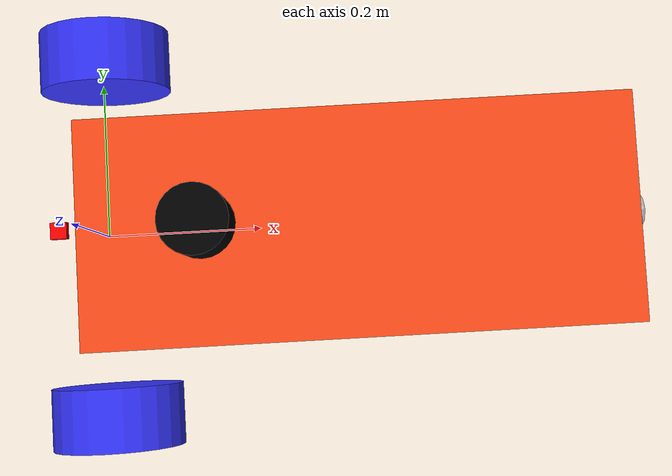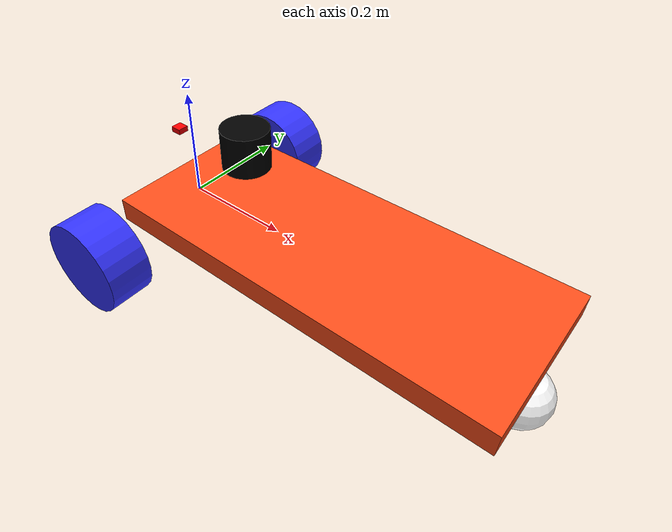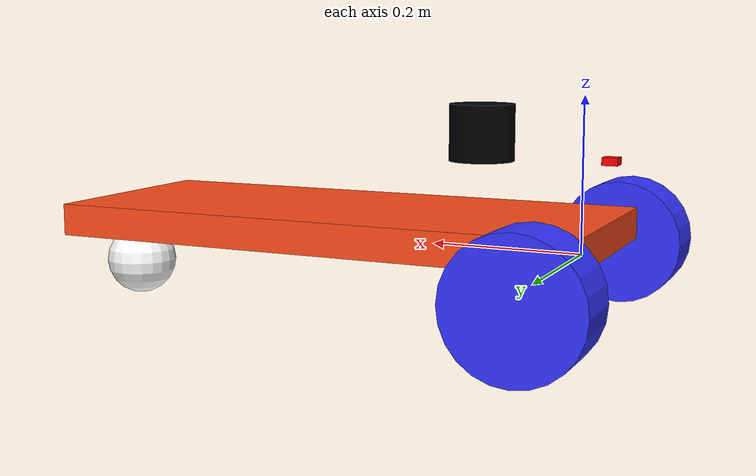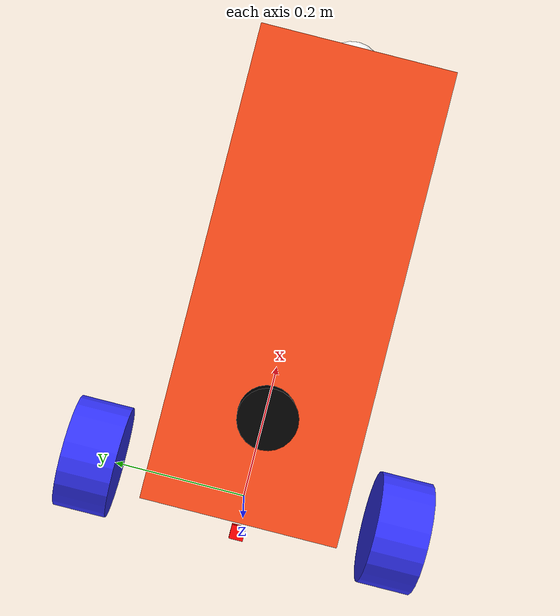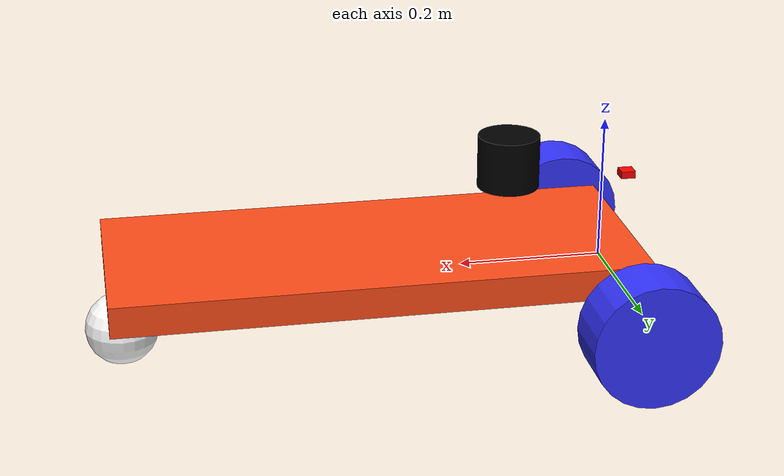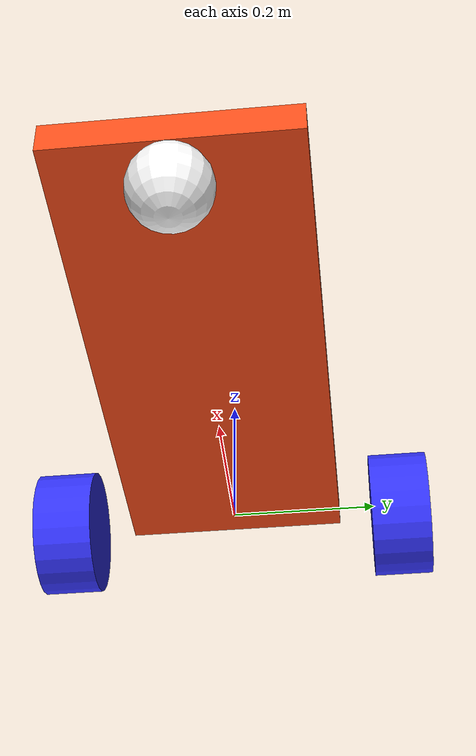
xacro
<?xml version="1.0"?>
<robot xmlns:xacro="http://www.ros.org/wiki/xacro"  name="robot">

    <xacro:arg name="use_ros2_control" default="true"/>
    <xacro:arg name="sim_mode" default="true"/>

    <xacro:include filename="robot_core.xacro" />

    <xacro:if value="$(arg use_ros2_control)">
        <xacro:include filename="ros2_control.xacro" />
    </xacro:if>
    <xacro:unless value="$(arg use_ros2_control)">
        <xacro:include filename="gazebo_control.xacro" />
    </xacro:unless>
    <xacro:include filename="lidar.xacro" />

</robot>

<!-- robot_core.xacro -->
<robot xmlns:xacro="http://www.ros.org/wiki/xacro" >

    <xacro:include filename="inertial_macros.xacro"/>

    <xacro:property name="chassis_length" value="0.725"/>
    <xacro:property name="chassis_width" value="0.3"/>
    <xacro:property name="chassis_height" value="0.043"/>
    <xacro:property name="chassis_mass" value="0.24"/>
    <xacro:property name="wheel_radius" value="0.0855"/>
    <xacro:property name="wheel_thickness" value="0.08"/>
    <xacro:property name="wheel_mass" value="0.05"/>
    <xacro:property name="wheel_offset_x" value="0.035"/>
    <xacro:property name="wheel_offset_y" value="0.2355"/>
    <xacro:property name="wheel_offset_z" value="0.0215"/>
    <xacro:property name="caster_wheel_radius" value="0.05"/>
    <xacro:property name="caster_wheel_mass" value="0.01"/>
    <xacro:property name="caster_wheel_offset_x" value="0.70645"/>
    <xacro:property name="caster_wheel_offset_z" value="0.057"/>

    <material name="white">
        <color rgba="1 1 1 1" />
    </material>

    <material name="orange">
        <color rgba="1 0.3 0.1 1"/>
    </material>

    <material name="blue">
        <color rgba="0.2 0.2 1 1"/>
    </material>

    <material name="black">
        <color rgba="0 0 0 1"/>
    </material>

    <material name="red">
        <color rgba="1 0 0 1"/>
    </material>

    <!-- BASE LINK -->

    <link name="base_link">

    </link>

    <!-- BASE_FOOTPRINT LINK -->

    <joint name="base_footprint_joint" type="fixed">
        <parent link="base_link"/>
        <child link="base_footprint"/>
        <origin xyz="0 0 0" rpy="0 0 0"/>
    </joint>

    <link name="base_footprint">
    </link>

    <!-- CHASSIS LINK -->

    <joint name="chassis_joint" type="fixed">
        <parent link="base_link"/>
        <child link="chassis"/>
        <origin xyz="${-wheel_offset_x} 0 0"/>
    </joint>

    <link name="chassis">
        <visual>
            <origin xyz="${chassis_length/2} 0 ${chassis_height/2}"/>
            <geometry>
                <box size="${chassis_length} ${chassis_width} ${chassis_height}"/>
            </geometry>
            <material name="orange"/>
        </visual>
        <collision>
            <origin xyz="${chassis_length/2} 0 ${chassis_height/2}"/>
            <geometry>
                <box size="${chassis_length} ${chassis_width} ${chassis_height}"/>
            </geometry>
        </collision>
        <xacro:inertial_box mass="0.24" x="${chassis_length}" y="${chassis_width}" z="${chassis_height}">
            <origin xyz="${chassis_length/2} 0 ${chassis_height/2}" rpy="0 0 0"/>
        </xacro:inertial_box>
    </link>

    <gazebo reference="chassis">
        <material>Gazebo/Orange</material>
    </gazebo>

    <!-- LEFT WHEEL LINK -->

    <joint name="left_wheel_joint" type="continuous">
        <parent link="base_link"/>
        <child link="left_wheel"/>
        <origin xyz="0 ${wheel_offset_y} -0.015" rpy="-${pi/2} 0 0" />
        <axis xyz="0 0 1"/>
    </joint>

    <link name="left_wheel">
        <visual>
            <origin xyz="0 0 0" rpy="0 0 0"/>
            <geometry>
                <cylinder radius="${wheel_radius}" length="${wheel_thickness}"/>
            </geometry>
            <material name="blue"/>
        </visual>
        <collision>
            <geometry>
                <sphere radius="${wheel_radius}"/>
            </geometry>
        </collision>
        <xacro:inertial_cylinder mass="${wheel_mass}" length="${wheel_thickness}" radius="${wheel_radius}">
            <origin xyz="0 0 0" rpy="0 0 0"/>
        </xacro:inertial_cylinder>
    </link>

    <gazebo reference="left_wheel">
        <material>Gazebo/Blue</material>
    </gazebo>

    <!-- RIGHT WHEEL LINK -->

    <joint name="right_wheel_joint" type="continuous">
        <parent link="base_link"/>
        <child link="right_wheel"/>
        <origin xyz="0 ${-wheel_offset_y} -0.015" rpy="${pi/2} 0 0" />
        <axis xyz="0 0 -1"/>
    </joint>

    <link name="right_wheel">
        <visual>
            <origin xyz="0 0 0" rpy="0 0 0"/>
            <geometry>
                <cylinder radius="${wheel_radius}" length="${wheel_thickness}"/>
            </geometry>
            <material name="blue"/>
        </visual>
        <collision>
            <geometry>
                <sphere radius="${wheel_radius}"/>
            </geometry>
        </collision>
        <xacro:inertial_cylinder mass="${wheel_mass}" length="${wheel_thickness}" radius="${wheel_radius}">
            <origin xyz="0 0 0" rpy="0 0 0"/>
        </xacro:inertial_cylinder>
    </link>

    <gazebo reference="right_wheel">
        <material>Gazebo/Blue</material>
    </gazebo>

    <!-- CASTER WHEEL LINK -->

    <joint name="caster_wheel_joint" type="fixed">
        <parent link="chassis"/>
        <child link="caster_wheel"/>
        <origin xyz="${caster_wheel_offset_x} 0 ${-caster_wheel_offset_z}"/>
    </joint>

    <link name="caster_wheel">
        <visual>
            <origin xyz="0 0 0" rpy="0 0 0"/>
            <geometry>
                <sphere radius="${caster_wheel_radius}"/>
            </geometry>
            <material name="white"/>
        </visual>
        <collision>
            <geometry>
                <sphere radius="${caster_wheel_radius}"/>
            </geometry>
        </collision>
        <xacro:inertial_sphere mass="${caster_wheel_mass}" radius="${caster_wheel_radius}">
            <origin xyz="0 0 0" rpy="0 0 0"/>
        </xacro:inertial_sphere>
    </link>

    <gazebo reference="caster_wheel">
        <material>Gazebo/White</material>
        <mu1 value="0.001"/>
        <mu2 value="0.001"/>
    </gazebo>

</robot>

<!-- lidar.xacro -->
<robot xmlns:xacro="http://www.ros.org/wiki/xacro" >

    <joint name="laser_joint" type="fixed">
        <parent link="chassis"/>
        <child link="laser_frame"/>
        <origin xyz="0.1697 0 0.15" rpy="0 0 0"/>
    </joint>

    <!-- Kich thuoc Ouster OS1 that - hinh tru phi85mm x cao 73.5mm, nang 484g. -->
    <link name="laser_frame">
        <visual>
            <geometry>
                <cylinder radius="0.0425" length="0.0735"/>
            </geometry>
            <material name="black"/>
        </visual>
        <collision>
            <geometry>
                <cylinder radius="0.0425" length="0.0735"/>
            </geometry>
        </collision>
        <xacro:inertial_cylinder mass="0.484" length="0.0735" radius="0.0425">
            <origin xyz="0 0 0" rpy="0 0 0"/>
        </xacro:inertial_cylinder>
    </link>

    <gazebo reference="laser_frame">
        <material>Gazebo/Black</material>

        <sensor name="laser" type="gpu_lidar">
            <pose> 0 0 0 0 0 0 </pose>
            <topic>scan</topic>
            <gz_frame_id>laser_frame</gz_frame_id>
            <visualize>true</visualize>
            <always_on>true</always_on>
            <update_rate>5</update_rate>
            <lidar>
                <scan>
                    <horizontal>
                        <samples>512</samples>
                        <resolution>1</resolution>
                        <min_angle>-3.141592653589793</min_angle>
                        <max_angle>3.141592653589793</max_angle>
                    </horizontal>
                    <vertical>
                        <samples>32</samples>
                        <resolution>1</resolution>
                        <min_angle>-0.39269908169872414</min_angle>
                        <max_angle>0.39269908169872414</max_angle>
                    </vertical>
                </scan>
                <range>
                    <min>0.1</min>
                    <max>40</max>
                    <resolution>0.02</resolution>
                </range>
            </lidar>
        </sensor>
    </gazebo>

    <joint name="imu_joint" type="fixed">
        <parent link="chassis"/>
        <child link="imu_link"/>
        <origin xyz="0.05 0 0.03" rpy="0 0 0"/>
    </joint>

    <link name="imu_link">
        <visual>
            <geometry>
                <box size="0.024 0.024 0.01"/>
            </geometry>
            <material name="red"/>
        </visual>
        <collision>
            <geometry>
                <box size="0.024 0.024 0.01"/>
            </geometry>
        </collision>
        <xacro:inertial_box mass="0.02" x="0.024" y="0.024" z="0.01">
            <origin xyz="0 0 0" rpy="0 0 0"/>
        </xacro:inertial_box>
    </link>

    <gazebo reference="imu_link">
        <material>Gazebo/Red</material>

        <sensor name="imu_sensor" type="imu">
            <pose>0 0 0 0 0 0</pose>
            <topic>imu</topic>
            <gz_frame_id>imu_link</gz_frame_id>
            <always_on>true</always_on>
            <update_rate>200</update_rate>
            <imu>
                <angular_velocity>
                    <x><noise type="gaussian"><mean>0</mean><stddev>0.00003</stddev></noise></x>
                    <y><noise type="gaussian"><mean>0</mean><stddev>0.00003</stddev></noise></y>
                    <z><noise type="gaussian"><mean>0</mean><stddev>0.00003</stddev></noise></z>
                </angular_velocity>
                <linear_acceleration>
                    <x><noise type="gaussian"><mean>0</mean><stddev>0.0015</stddev></noise></x>
                    <y><noise type="gaussian"><mean>0</mean><stddev>0.0015</stddev></noise></y>
                    <z><noise type="gaussian"><mean>0</mean><stddev>0.0015</stddev></noise></z>
                </linear_acceleration>
            </imu>
        </sensor>
    </gazebo>

    <joint name="gps_joint" type="fixed">
        <parent link="chassis"/>
        <child link="gps_link"/>
        <origin xyz="0 0 0.12" rpy="0 0 0"/>
    </joint>

    <link name="gps_link">
        <visual>
            <geometry>
                <box size="0.02 0.02 0.01"/>
            </geometry>
            <material name="red"/>
        </visual>
        <collision>
            <geometry>
                <box size="0.02 0.02 0.01"/>
            </geometry>
        </collision>
        <xacro:inertial_box mass="0.01" x="0.02" y="0.02" z="0.01">
            <origin xyz="0 0 0" rpy="0 0 0"/>
        </xacro:inertial_box>
    </link>

    <gazebo reference="gps_link">
        <material>Gazebo/Red</material>

        <sensor name="navsat_sensor" type="navsat">
            <pose>0 0 0 0 0 0</pose>
            <topic>navsat</topic>
            <gz_frame_id>gps_link</gz_frame_id>
            <always_on>true</always_on>
            <update_rate>10</update_rate>
            <navsat>
                <position_sensing>
                    <horizontal><noise type="gaussian"><mean>0</mean><stddev>0.000000045</stddev></noise></horizontal>
                    <vertical><noise type="gaussian"><mean>0</mean><stddev>1.5</stddev></noise></vertical>
                </position_sensing>
            </navsat>
        </sensor>
    </gazebo>

</robot>
